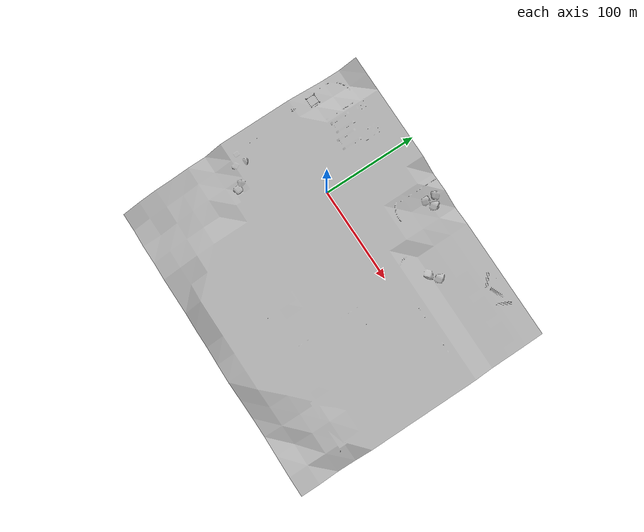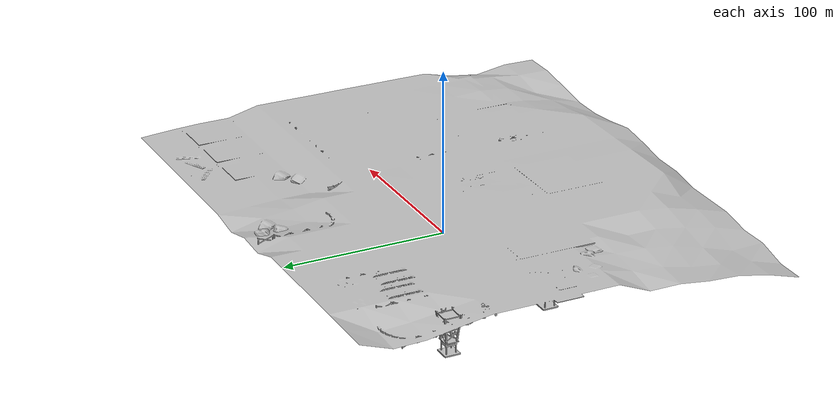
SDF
<?xml version="1.0" ?>
<sdf version="1.6">
  <world name="empty_world">

    <!-- 重力 -->
    <gravity>0 0 -9.8</gravity>

    <!-- 物理引擎 -->
    <physics type="ode">
      <max_step_size>0.001</max_step_size>
      <real_time_factor>1.0</real_time_factor>
      <real_time_update_rate>1000</real_time_update_rate>
    </physics>

    <!-- 光源 -->
    <include>
      <uri>model://sun</uri>
    </include>

    <!-- 地面 -->
    <include>
      <uri>model://ground_plane</uri>
    </include>

    <include>
      <uri>model://us_military_camp</uri>
      <pose>0 0 0 0 0 0</pose>
    </include>

  </world>
</sdf>

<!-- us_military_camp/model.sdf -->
<sdf version="1.6">
  <model name="us_military_camp">
    <static>true</static>

    <!-- 需要整体移动/旋转/缩放，就改这里 -->
    <pose>0 0 0 0 0 0</pose>

    <link name="link">
      <visual name="visual">
        <!-- 模型原始坐标系为 Y-up 时，用 X 轴旋转 -90° 让其“躺平” -->
        <pose>0 0 0 -1.5708 0 0</pose>
        <geometry>
          <mesh>
            <uri>model://us_military_camp/meshes/US_Military_Camp.obj</uri>
            <!-- 单位不对就调 scale，比如 0.01 是常见“厘米->米” -->
            <scale>1 1 1</scale>
            <submesh>
              <center>true</center>
            </submesh>
          </mesh>
        </geometry>
      </visual>

      <!-- 想要碰撞，就加 collision（如果模型很复杂会很卡） -->
      <collision name="collision">
        <!-- 与 visual 保持一致的旋转 -->
        <pose>0 0 0 -1.5708 0 0</pose>
        <geometry>
          <mesh>
            <uri>model://us_military_camp/meshes/us_military_camp.stl</uri>
            <scale>1 1 1</scale>
            <submesh>
              <center>true</center>
            </submesh>
          </mesh>
        </geometry>
      </collision>
    </link>
  </model>
</sdf>
